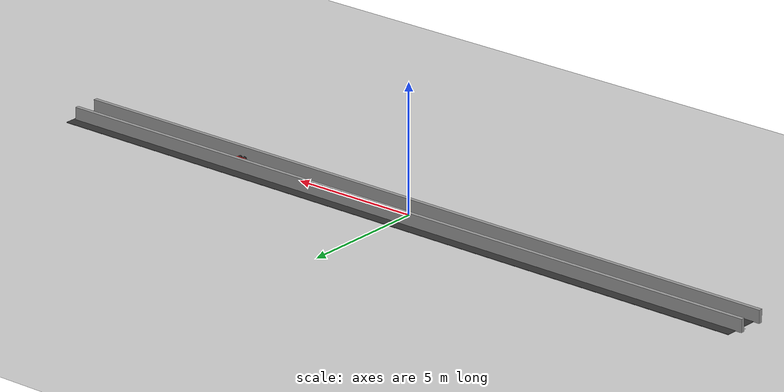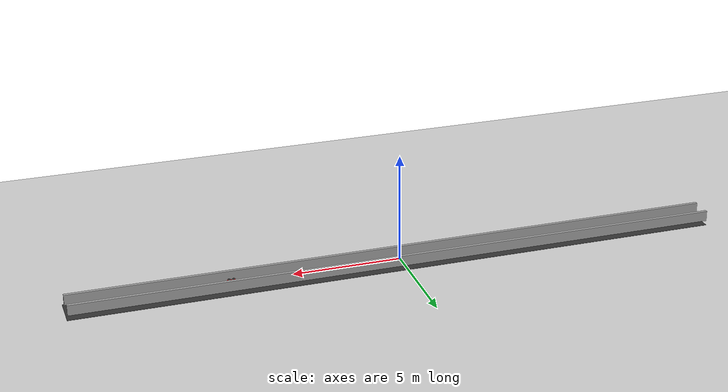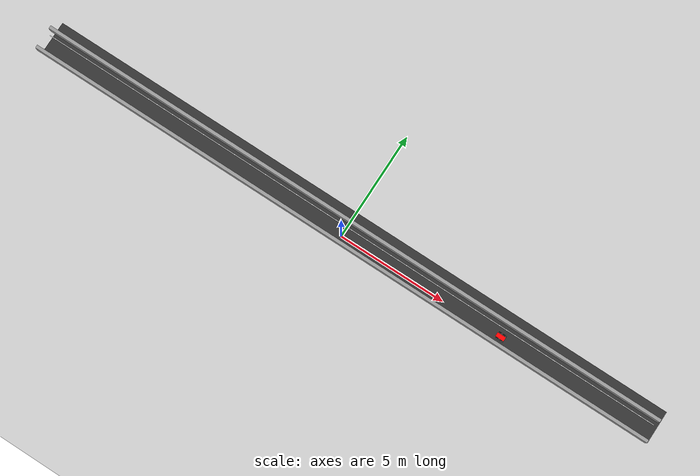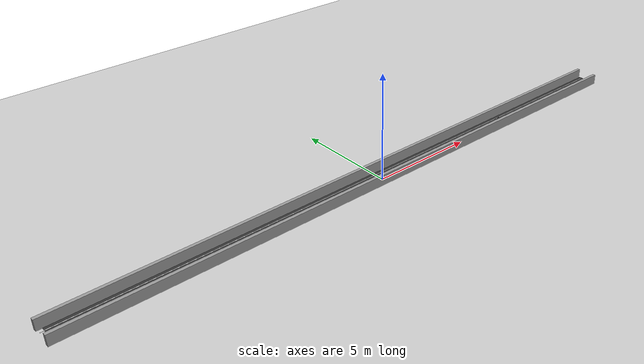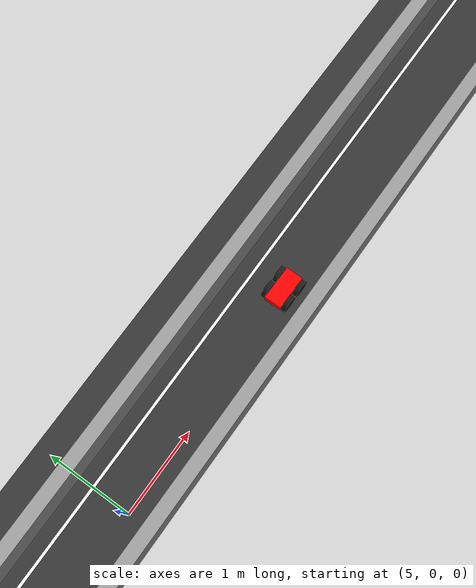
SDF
<sdf version="1.7">
 <world name="default">
  <model name="my_car">
   <static>0</static>
   <link name="chassis">
    <pose>0 0 0.1 0 -0 0</pose>
    <inertial>
     <mass>1</mass>
     <inertia><ixx>0.1</ixx><ixy>0</ixy><ixz>0</ixz><iyy>0.1</iyy><iyz>0</iyz><izz>0.1</izz></inertia>
    </inertial>
    <collision name="collision">
     <geometry><box><size>0.4 0.2 0.1</size></box></geometry>
     <surface><friction><ode><mu>1</mu><mu2>1</mu2></ode></friction></surface>
    </collision>
    <visual name="visual">
     <geometry><box><size>0.4 0.2 0.1</size></box></geometry>
     <material><ambient>1 0 0 1</ambient><diffuse>1 0 0 1</diffuse><specular>0.1 0.1 0.1 1</specular></material>
    </visual>
   </link>
   <link name="front_left_wheel">
    <pose>0.1 0.13 0.1 -0 1.5707 1.5707</pose>
    <inertial>
     <mass>0.2</mass>
     <inertia><ixx>0.0001</ixx><ixy>0</ixy><ixz>0</ixz><iyy>0.0001</iyy><iyz>0</iyz><izz>0.0001</izz></inertia>
    </inertial>
    <collision name="collision">
     <geometry><cylinder><radius>0.1</radius><length>0.05</length></cylinder></geometry>
     <surface><friction><ode><mu>100</mu><mu2>50</mu2><fdir1>0 0 1</fdir1></ode></friction></surface>
    </collision>
    <visual name="visual">
     <geometry><cylinder><radius>0.1</radius><length>0.05</length></cylinder></geometry>
     <material><ambient>0.1 0.1 0.1 1</ambient><diffuse>0.1 0.1 0.1 1</diffuse></material>
    </visual>
   </link>
   <link name="front_right_wheel">
    <pose>0.1 -0.13 0.1 -0 1.5707 1.5707</pose>
    <inertial>
     <mass>0.2</mass>
     <inertia><ixx>0.0001</ixx><ixy>0</ixy><ixz>0</ixz><iyy>0.0001</iyy><iyz>0</iyz><izz>0.0001</izz></inertia>
    </inertial>
    <collision name="collision">
     <geometry><cylinder><radius>0.1</radius><length>0.05</length></cylinder></geometry>
     <surface><friction><ode><mu>100</mu><mu2>50</mu2><fdir1>0 0 1</fdir1></ode></friction></surface>
    </collision>
    <visual name="visual">
     <geometry><cylinder><radius>0.1</radius><length>0.05</length></cylinder></geometry>
     <material><ambient>0.1 0.1 0.1 1</ambient><diffuse>0.1 0.1 0.1 1</diffuse></material>
    </visual>
   </link>
   <link name="rear_left_wheel">
    <pose>-0.1 0.13 0.1 -0 1.5707 1.5707</pose>
    <inertial>
     <mass>0.2</mass>
     <inertia><ixx>0.0001</ixx><ixy>0</ixy><ixz>0</ixz><iyy>0.0001</iyy><iyz>0</iyz><izz>0.0001</izz></inertia>
    </inertial>
    <collision name="collision">
     <geometry><cylinder><radius>0.1</radius><length>0.05</length></cylinder></geometry>
     <surface><friction><ode><mu>100</mu><mu2>50</mu2><fdir1>0 0 1</fdir1></ode></friction></surface>
    </collision>
    <visual name="visual">
     <geometry><cylinder><radius>0.1</radius><length>0.05</length></cylinder></geometry>
     <material><ambient>0.1 0.1 0.1 1</ambient><diffuse>0.1 0.1 0.1 1</diffuse></material>
    </visual>
   </link>
   <link name="rear_right_wheel">
    <pose>-0.1 -0.13 0.1 -0 1.5707 1.5707</pose>
    <inertial>
     <mass>0.2</mass>
     <inertia><ixx>0.0001</ixx><ixy>0</ixy><ixz>0</ixz><iyy>0.0001</iyy><iyz>0</iyz><izz>0.0001</izz></inertia>
    </inertial>
    <collision name="collision">
     <geometry><cylinder><radius>0.1</radius><length>0.05</length></cylinder></geometry>
     <surface><friction><ode><mu>100</mu><mu2>50</mu2><fdir1>0 0 1</fdir1></ode></friction></surface>
    </collision>
    <visual name="visual">
     <geometry><cylinder><radius>0.1</radius><length>0.05</length></cylinder></geometry>
     <material><ambient>0.1 0.1 0.1 1</ambient><diffuse>0.1 0.1 0.1 1</diffuse></material>
    </visual>
   </link>
   <joint name="front_left_wheel_joint" type="revolute">
    <parent>chassis</parent>
    <child>front_left_wheel</child>
    <axis>
     <xyz>0 0 1</xyz>
     <dynamics>
      <damping>0.1</damping>
      <friction>0.1</friction>
      <spring_reference>0</spring_reference>
      <spring_stiffness>0</spring_stiffness>
     </dynamics>
     <limit><effort>10</effort><lower>-1e+16</lower><upper>1e+16</upper></limit>
    </axis>
   </joint>
   <joint name="front_right_wheel_joint" type="revolute">
    <parent>chassis</parent>
    <child>front_right_wheel</child>
    <axis>
     <xyz>0 0 1</xyz>
     <dynamics>
      <damping>0.1</damping>
      <friction>0.1</friction>
      <spring_reference>0</spring_reference>
      <spring_stiffness>0</spring_stiffness>
     </dynamics>
     <limit><effort>10</effort><lower>-1e+16</lower><upper>1e+16</upper></limit>
    </axis>
   </joint>
   <joint name="rear_left_wheel_joint" type="revolute">
    <parent>chassis</parent>
    <child>rear_left_wheel</child>
    <axis>
     <xyz>0 0 -1</xyz>
     <dynamics>
      <damping>0.1</damping>
      <friction>0.1</friction>
      <spring_reference>0</spring_reference>
      <spring_stiffness>0</spring_stiffness>
     </dynamics>
     <limit><effort>10</effort><lower>-1e+16</lower><upper>1e+16</upper></limit>
    </axis>
   </joint>
   <joint name="rear_right_wheel_joint" type="revolute">
    <parent>chassis</parent>
    <child>rear_right_wheel</child>
    <axis>
     <xyz>0 0 -1</xyz>
     <dynamics>
      <damping>0.1</damping>
      <friction>0.1</friction>
      <spring_reference>0</spring_reference>
      <spring_stiffness>0</spring_stiffness>
     </dynamics>
     <limit><effort>10</effort><lower>-1e+16</lower><upper>1e+16</upper></limit>
    </axis>
   </joint>
   <plugin name="differential_drive_controller" filename="libgazebo_ros_diff_drive.so">
    <ros><namespace>/my_car</namespace></ros>
    <update_rate>100</update_rate>
    <left_joint>rear_left_wheel_joint</left_joint>
    <right_joint>rear_right_wheel_joint</right_joint>
    <wheel_separation>0.26</wheel_separation>
    <wheel_diameter>0.2</wheel_diameter>
    <max_wheel_torque>10</max_wheel_torque>
    <max_wheel_acceleration>1.0</max_wheel_acceleration>
    <command_topic>cmd_vel</command_topic>
    <odometry_topic>odom</odometry_topic>
    <odometry_frame>odom</odometry_frame>
    <robot_base_frame>chassis</robot_base_frame>
    <publish_wheel_tf>1</publish_wheel_tf>
    <publish_odom_tf>1</publish_odom_tf>
    <publish_wheel_joint_state>1</publish_wheel_joint_state>
    <legacy_mode>0</legacy_mode>
   </plugin>
   <pose>7.78009 0.066731 0.020001 -9e-06 -0 -0.017065</pose>
  </model>
  <model name="ground_plane">
   <static>1</static>
   <link name="link">
    <collision name="collision">
     <geometry><plane><normal>0 0 1</normal><size>100 100</size></plane></geometry>
     <surface>
      <contact><collide_bitmask>65535</collide_bitmask></contact>
      <friction><ode><mu>100</mu><mu2>50</mu2></ode></friction>
     </surface>
    </collision>
    <visual name="visual">
     <cast_shadows>0</cast_shadows>
     <geometry><plane><normal>0 0 1</normal><size>100 100</size></plane></geometry>
     <material>
      <script><uri>file://media/materials/scripts/gazebo.material</uri><name>Gazebo/Grey</name></script>
     </material>
    </visual>
   </link>
  </model>
  <light name="sun" type="directional">
   <pose>0 0 10 0 -0 0</pose>
   <diffuse>0.8 0.8 0.8 1</diffuse>
   <specular>0.2 0.2 0.2 1</specular>
   <attenuation>
    <range>1000</range>
    <constant>0.9</constant>
    <linear>0.01</linear>
    <quadratic>0.001</quadratic>
   </attenuation>
   <direction>-0.5 0.1 -0.9</direction>
   <spot><inner_angle>0</inner_angle><outer_angle>0</outer_angle><falloff>0</falloff></spot>
  </light>
  <scene><shadows>0</shadows><ambient>0.4 0.4 0.4 1</ambient><background>0.7 0.7 0.7 1</background></scene>
  <physics type="ode">
   <real_time_update_rate>1000</real_time_update_rate>
   <max_step_size>0.001</max_step_size>
   <real_time_factor>1</real_time_factor>
   <ode>
    <solver>
     <type>quick</type>
     <iters>150</iters>
     <precon_iters>0</precon_iters>
     <sor>1.4</sor>
     <use_dynamic_moi_rescaling>1</use_dynamic_moi_rescaling>
    </solver>
    <constraints>
     <cfm>1e-05</cfm>
     <erp>0.2</erp>
     <contact_max_correcting_vel>2000</contact_max_correcting_vel>
     <contact_surface_layer>0.01</contact_surface_layer>
    </constraints>
   </ode>
  </physics>
  <model name="divider">
   <static>1</static>
   <pose>0 0.45 0.02 0 -0 0</pose>
   <link name="link">
    <visual name="visual">
     <geometry><box><size>30 0.03 0.01</size></box></geometry>
     <material><ambient>1 1 1 1</ambient><diffuse>1 1 1 1</diffuse><specular>1 1 1 1</specular></material>
    </visual>
   </link>
  </model>
  <gravity>0 0 -9.8</gravity>
  <magnetic_field>6e-06 2.3e-05 -4.2e-05</magnetic_field>
  <atmosphere type="adiabatic"/>
  <audio><device>default</device></audio>
  <spherical_coordinates>
   <surface_model>EARTH_WGS84</surface_model>
   <latitude_deg>0</latitude_deg>
   <longitude_deg>0</longitude_deg>
   <elevation>0</elevation>
   <heading_deg>0</heading_deg>
  </spherical_coordinates>
  <model name="road_n">
   <pose>0 0.0163 0 0 -0 0</pose>
   <link name="Wall_5">
    <collision name="Wall_5_Collision">
     <geometry><box><size>30.15 0.15 0.5</size></box></geometry>
     <pose>0 0 0.25 0 -0 0</pose>
    </collision>
    <visual name="Wall_5_Visual">
     <pose>0 0 0.25 0 -0 0</pose>
     <geometry><box><size>30.15 0.15 0.5</size></box></geometry>
     <material>
      <script><uri>file://media/materials/scripts/gazebo.material</uri><name>Gazebo/Grey</name></script>
      <ambient>1 1 1 1</ambient>
     </material>
     <meta><layer>0</layer></meta>
    </visual>
    <pose>0 -0.3125 0 0 -0 0</pose>
   </link>
   <static>1</static>
  </model>
  <model name="road_n_clone">
   <pose>-0 1.15839 0 0 -0 0</pose>
   <link name="Wall_5">
    <collision name="Wall_5_Collision">
     <geometry><box><size>30.15 0.15 0.5</size></box></geometry>
     <pose>0 0 0.25 0 -0 0</pose>
    </collision>
    <visual name="Wall_5_Visual">
     <pose>0 0 0.25 0 -0 0</pose>
     <geometry><box><size>30.15 0.15 0.5</size></box></geometry>
     <material>
      <script><uri>file://media/materials/scripts/gazebo.material</uri><name>Gazebo/Grey</name></script>
      <ambient>1 1 1 1</ambient>
     </material>
     <meta><layer>0</layer></meta>
    </visual>
    <pose>0 -0.4625 0 0 -0 0</pose>
   </link>
   <static>1</static>
  </model>
  <model name="road">
   <link name="link">
    <pose>-0.163601 -1.01548 0 0 -0 0</pose>
    <inertial>
     <inertia><ixx>0</ixx><ixy>0</ixy><ixz>0</ixz><iyy>0</iyy><iyz>0</iyz><izz>0</izz></inertia>
     <mass>0</mass>
    </inertial>
    <visual name="visual">
     <geometry><box><size>30 1.502042 0.02</size></box></geometry>
     <material>
      <ambient>0.2 0.2 0.2 1</ambient>
      <diffuse>0.2 0.2 0.2 1</diffuse>
      <specular>0.2 0.2 0.2 1</specular>
      <shader type="pixel"/>
      <script><name>ModelPreview_1::link::visual_MATERIAL_</name><uri>__default__</uri></script>
     </material>
    </visual>
    <collision name="collision">
     <geometry><box><size>30 2.02042 0.02</size></box></geometry>
     <surface>
      <friction>
       <ode><mu>1</mu><mu2>1</mu2><fdir1>0 0 0</fdir1><slip1>0</slip1><slip2>0</slip2></ode>
       <torsional>
        <coefficient>1</coefficient>
        <patch_radius>0</patch_radius>
        <surface_radius>0</surface_radius>
        <use_patch_radius>1</use_patch_radius>
        <ode><slip>0</slip></ode>
       </torsional>
      </friction>
      <bounce><restitution_coefficient>0</restitution_coefficient><threshold>1e+06</threshold></bounce>
      <contact>
       <collide_without_contact>0</collide_without_contact>
       <collide_without_contact_bitmask>1</collide_without_contact_bitmask>
       <collide_bitmask>1</collide_bitmask>
       <ode>
        <soft_cfm>0</soft_cfm>
        <soft_erp>0.2</soft_erp>
        <kp>1e+13</kp>
        <kd>1</kd>
        <max_vel>0.01</max_vel>
        <min_depth>0</min_depth>
       </ode>
       <bullet>
        <split_impulse>1</split_impulse>
        <split_impulse_penetration_threshold>-0.01</split_impulse_penetration_threshold>
        <soft_cfm>0</soft_cfm>
        <soft_erp>0.2</soft_erp>
        <kp>1e+13</kp>
        <kd>1</kd>
       </bullet>
      </contact>
     </surface>
    </collision>
   </link>
   <static>1</static>
   <pose>0.321633 1.44792 0.01 0 -0 0</pose>
  </model>
 </world>
</sdf>
